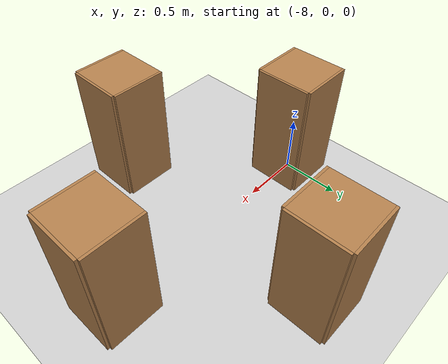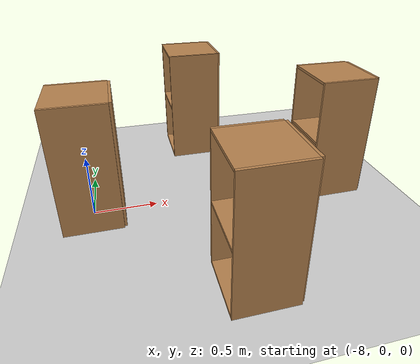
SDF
<?xml version="1.0" ?>

<sdf version="1.5">
	<world name="default">
		<!-- A global light source -->
		<include>
			<uri>model://sun</uri>
		</include>

		<!-- A ground plane -->
		<include>
			<uri>model://ground_plane</uri>
		</include>

		<!-- A ground plane -->
		<include>
			<uri>model://cabinet</uri>
			<static>true</static>
			<pose>-6 0 0 0 0 0</pose>
		</include>
<!-- A ground plane -->
		<include>
			<uri>model://cabinet</uri>
			<static>true</static>
			<pose>-8 0 0 0 0 0</pose>
		</include>
<!-- A ground plane -->
		<include>
			<uri>model://cabinet</uri>
			<static>true</static>
			<pose>-7 -1 0 0 0 0</pose>
		</include>
<!-- A ground plane -->
		<include>
			<uri>model://cabinet</uri>
			<static>true</static>
			<pose>-7 1 0 0 0 0</pose>
		</include>
	</world>
</sdf>

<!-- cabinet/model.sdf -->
<sdf version="1.5">
  <model name="cabinet">
    <static>true</static>
    <link name="cabinet_bottom_plate">
      <inertial>
        <pose>0 0 -1 0 0 0</pose>
        <inertia>
          <ixx>2.050000</ixx>
          <ixy>0</ixy>
          <ixz>0</ixz>
          <iyy>2.050000</iyy>
          <iyz>0</iyz>
          <izz>2.050000</izz>
        </inertia>
        <mass>25.000000</mass>
      </inertial>
      <collision name="cabinet_bottom_plate_geom">
        <pose>0 0 0.010000 0 0 0</pose>
        <geometry>
          <box>
            <size>0.450000 0.450000 0.020000</size>
          </box>
        </geometry>
      </collision>
      <visual name="cabinet_bottom_plate_geom_visual">
        <pose>0 0 0.010000 0 0 0</pose>
        <geometry>
          <box>
            <size>0.450000 0.450000 0.020000</size>
          </box>
        </geometry>
        <material>
          <script>
            <uri>model://media/materials/scripts/gazebo.material</uri>
            <name>Gazebo/Wood</name>
          </script>
        </material>
      </visual>
      <collision name="cabinet_bottom_plate_geom_cabinet_back_plate">
        <pose>0.235000 0 0.510000 0 0 0</pose>
        <geometry>
          <box>
            <size>0.020000 0.450000 1.020000</size>
          </box>
        </geometry>
      </collision>
      <visual name="cabinet_bottom_plate_geom_cabinet_back_plate_visual">
        <pose>0.235000 0 0.510000 0 0 0</pose>
        <geometry>
          <box>
            <size>0.020000 0.450000 1.020000</size>
          </box>
        </geometry>
        <material>
          <script>
            <uri>model://media/materials/scripts/gazebo.material</uri>
            <name>Gazebo/Wood</name>
          </script>
        </material>
      </visual>
      <collision name="cabinet_bottom_plate_geom_cabinet_left_plate">
        <pose>0 0.235000 0.510000 0 0 0</pose>
        <geometry>
          <box>
            <size>0.450000 0.020000 1.020000</size>
          </box>
        </geometry>
      </collision>
      <visual name="cabinet_bottom_plate_geom_cabinet_left_plate_visual">
        <pose>0 0.235000 0.510000 0 0 0</pose>
        <geometry>
          <box>
            <size>0.450000 0.020000 1.020000</size>
          </box>
        </geometry>
        <material>
          <script>
            <uri>model://media/materials/scripts/gazebo.material</uri>
            <name>Gazebo/Wood</name>
          </script>
        </material>
      </visual>
      <collision name="cabinet_bottom_plate_geom_cabinet_middle_plate">
        <pose>0 0 0.510000 0 0 0</pose>
        <geometry>
          <box>
            <size>0.450000 0.450000 0.020000</size>
          </box>
        </geometry>
      </collision>
      <visual name="cabinet_bottom_plate_geom_cabinet_middle_plate_visual">
        <pose>0 0 0.510000 0 0 0</pose>
        <geometry>
          <box>
            <size>0.450000 0.450000 0.020000</size>
          </box>
        </geometry>
        <material>
          <script>
            <uri>model://media/materials/scripts/gazebo.material</uri>
            <name>Gazebo/Wood</name>
          </script>
        </material>
      </visual>
      <collision name="cabinet_bottom_plate_geom_cabinet_right_plate">
        <pose>0 -0.235000 0.510000 0 0 0</pose>
        <geometry>
          <box>
            <size>0.450000 0.020000 1.020000</size>
          </box>
        </geometry>
      </collision>
      <visual name="cabinet_bottom_plate_geom_cabinet_right_plate_visual">
        <pose>0 -0.235000 0.510000 0 0 0</pose>
        <geometry>
          <box>
            <size>0.450000 0.020000 1.020000</size>
          </box>
        </geometry>
        <material>
          <script>
            <uri>model://media/materials/scripts/gazebo.material</uri>
            <name>Gazebo/Wood</name>
          </script>
        </material>
      </visual>
      <collision name="cabinet_bottom_plate_geom_cabinet_top_plate">
        <pose>0 0 1.010000 0 0 0</pose>
        <geometry>
          <box>
            <size>0.450000 0.450000 0.020000</size>
          </box>
        </geometry>
      </collision>
      <visual name="cabinet_bottom_plate_geom_cabinet_top_plate_visual">
        <pose>0 0 1.010000 0 0 0</pose>
        <geometry>
          <box>
            <size>0.450000 0.450000 0.020000</size>
          </box>
        </geometry>
        <material>
          <script>
            <uri>model://media/materials/scripts/gazebo.material</uri>
            <name>Gazebo/Wood</name>
          </script>
        </material>
      </visual>
    </link>
  </model>
</sdf>
